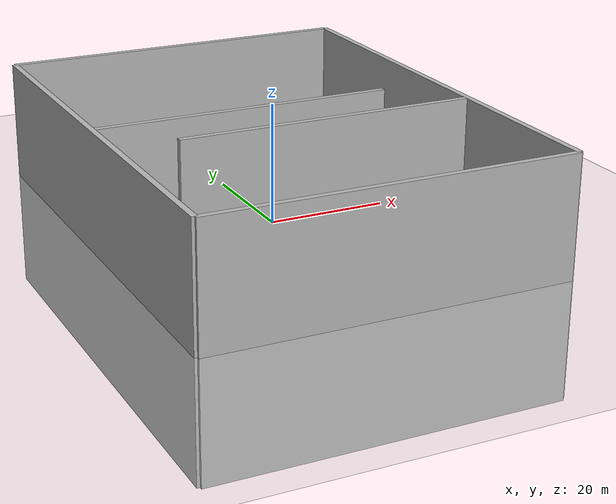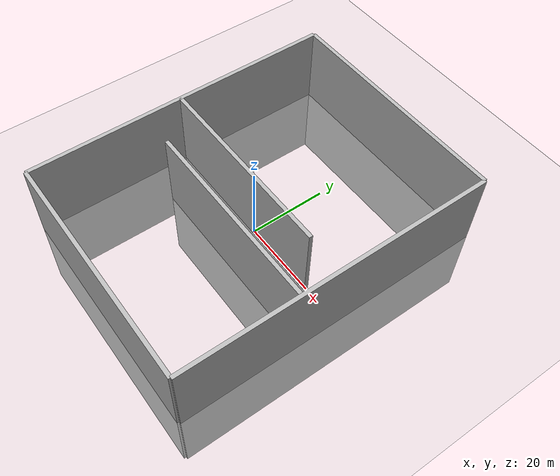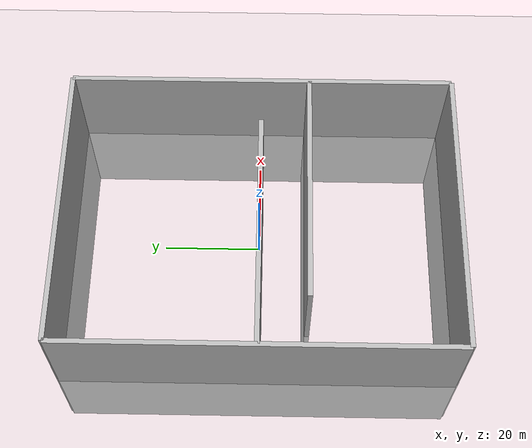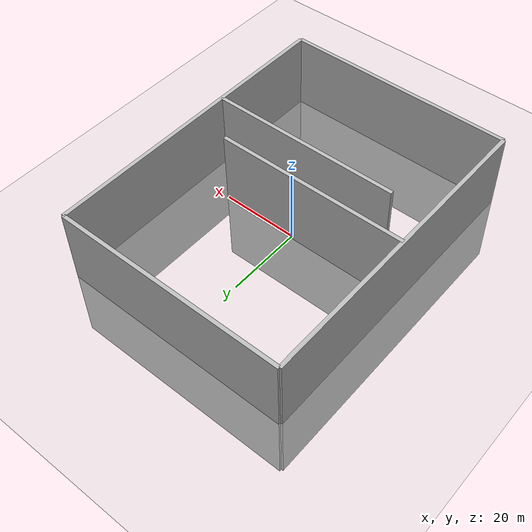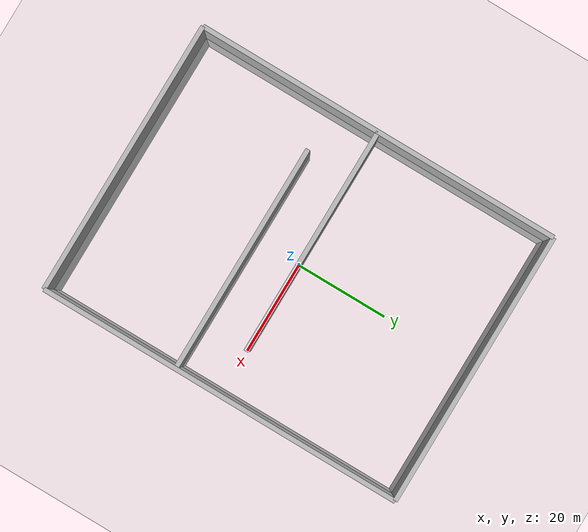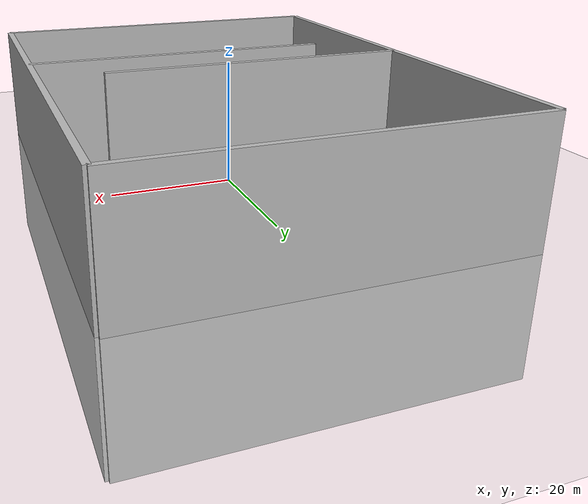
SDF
<?xml version="1.0"?>
<sdf version="1.4">
  <world name="default">
    <include>
      <uri>model://ground_plane</uri>
    </include>
    <include>
      <uri>model://sun</uri>
    </include>
    <scene>
      <shadows>0</shadows>
    </scene>

    <model name='Wall'>
      <static>true</static>
      <link name="wall1">
        <pose>30 0 0 0 0 0 </pose>
        <visual name="visual">
          <geometry>
            <box>
              <size>1 80 40</size>
            </box>
          </geometry>
        </visual>
        <collision name="collision">
          <geometry>
            <box>
              <size>1 80 40</size>
            </box>
          </geometry>
          <max_contacts>10</max_contacts>
        </collision>
      </link>
      <link name="wall2">
        <pose>-30 0 0 0 0 0 </pose>
        <visual name="visual">
          <geometry>
            <box>
              <size>1 80 40</size>
            </box>
          </geometry>
        </visual>
        <collision name="collision">
          <geometry>
            <box>
              <size>1 80 40</size>
            </box>
          </geometry>
          <max_contacts>10</max_contacts>
        </collision>
      </link>
      <link name="wall3">
        <pose>0 -40 0 0 0 1.57 </pose>
        <visual name="visual">
          <geometry>
            <box>
              <size>1 60 40</size>
            </box>
          </geometry>
        </visual>
        <collision name="collision">
          <geometry>
            <box>
              <size>1 60 40</size>
            </box>
          </geometry>
          <max_contacts>10</max_contacts>
        </collision>
      </link>
      <link name="wall4">
        <pose>0 40 0 0 0 1.57 </pose>
        <visual name="visual">
          <geometry>
            <box>
              <size>1 60 40</size>
            </box>
          </geometry>
        </visual>
        <collision name="collision">
          <geometry>
            <box>
              <size>1 60 40</size>
            </box>
          </geometry>
          <max_contacts>10</max_contacts>
        </collision>
      </link>
    </model>

    <model name='Wall_Obstacles'>
      <static>true</static>
      <link name="wall1">
        <pose>5 -10 0 0 0 1.57 </pose>
        <visual name="visual">
          <geometry>
            <box>
              <size>1 50 40</size>
            </box>
          </geometry>
        </visual>
        <collision name="collision">
          <geometry>
            <box>
              <size>1 50 40</size>
            </box>
          </geometry>
          <max_contacts>10</max_contacts>
        </collision>
      </link>
      <link name="wall2">
        <pose>-5 0 0 0 0 1.57 </pose>
        <visual name="visual">
          <geometry>
            <box>
              <size>1 50 40</size>
            </box>
          </geometry>
        </visual>
        <collision name="collision">
          <geometry>
            <box>
              <size>1 50 40</size>
            </box>
          </geometry>
          <max_contacts>10</max_contacts>
        </collision>
      </link>
    </model>

    <!-- Physics settings -->
    <physics name='default_physics' default='0' type='ode'>
      <max_step_size>0.001</max_step_size>
      <real_time_factor>.25</real_time_factor>
      <real_time_update_rate>250</real_time_update_rate>
    </physics>

    <gui>
        <camera name="user_camera">
            <pose>-20 -10 100 0 1.4 0</pose>
        </camera>
    </gui>
  </world>
</sdf>
